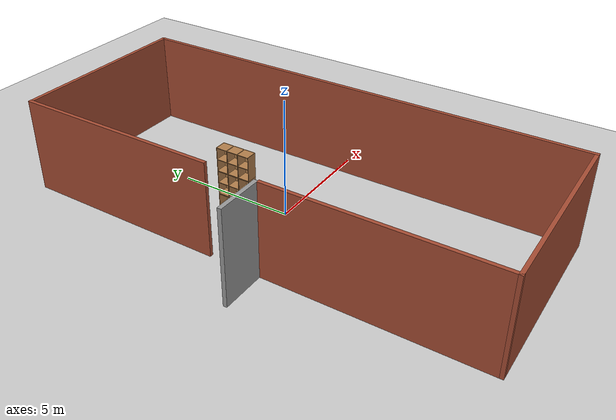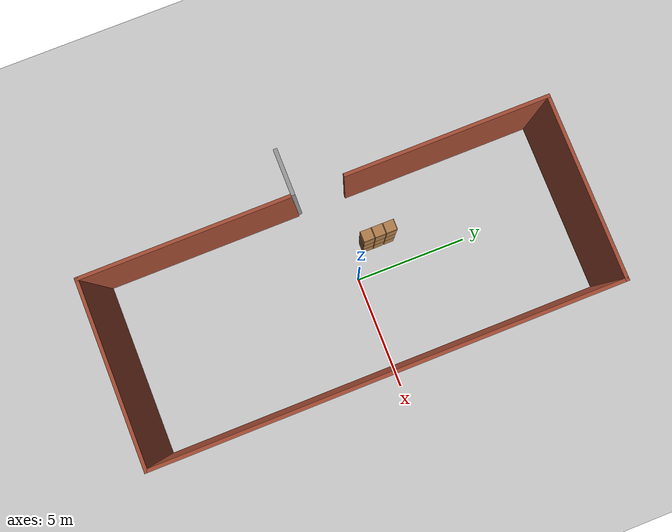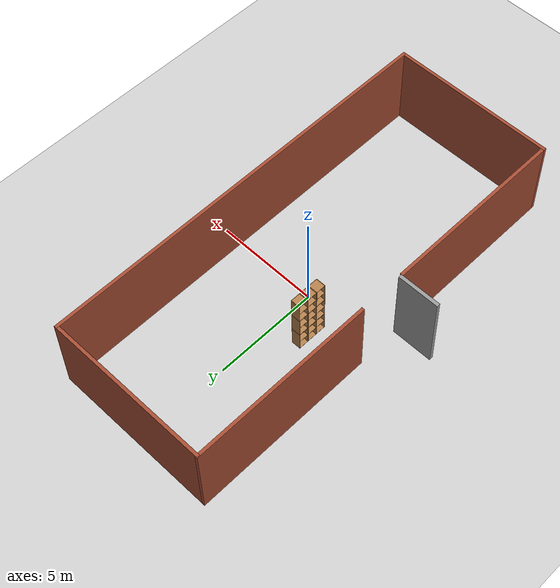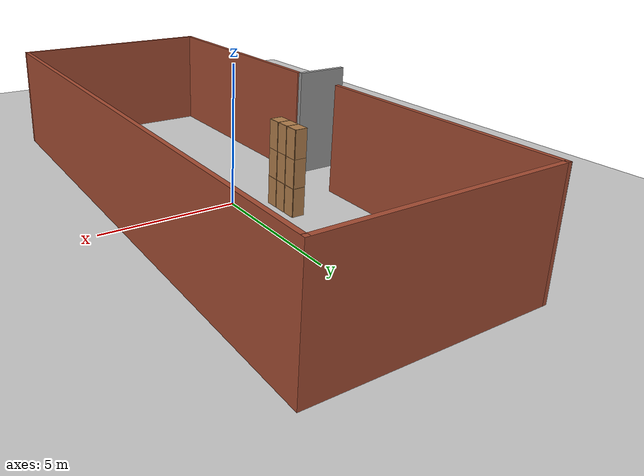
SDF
<sdf version="1.6">
 <world name="default">
  <model name="ground_plane">
   <static>1</static>
   <link name="link">
    <collision name="collision">
     <geometry><plane><normal>0 0 1</normal><size>100 100</size></plane></geometry>
     <surface>
      <contact><collide_bitmask>65535</collide_bitmask></contact>
      <friction><ode><mu>100</mu><mu2>50</mu2></ode></friction>
     </surface>
    </collision>
    <visual name="visual">
     <cast_shadows>0</cast_shadows>
     <geometry><plane><normal>0 0 1</normal><size>100 100</size></plane></geometry>
     <material>
      <script><uri>file://media/materials/scripts/gazebo.material</uri><name>Gazebo/Grey</name></script>
     </material>
    </visual>
   </link>
  </model>
  <model name="AGVUntitled">
   <pose>0.208057 -0.403929 0 0 -0 -3.1397</pose>
   <link name="Door_1">
    <collision name="Door_1_Collision">
     <geometry><box><size>2 0.17 4</size></box></geometry>
     <pose>0 0 2 0 -0 0</pose>
    </collision>
    <visual name="Door_1_Visual">
     <pose>0 0 2 0 -0 0</pose>
     <geometry><box><size>2 0.17 4</size></box></geometry>
     <material>
      <script><uri>file://media/materials/scripts/gazebo.material</uri><name>Gazebo/Grey</name></script>
     </material>
    </visual>
    <pose>4.90883 0.925001 0 0 -0 0</pose>
   </link>
   <link name="Wall_11">
    <collision name="Wall_11_Collision">
     <geometry><box><size>8 0.15 4</size></box></geometry>
     <pose>0 0 2 0 -0 0</pose>
    </collision>
    <visual name="Wall_11_Visual">
     <pose>0 0 2 0 -0 0</pose>
     <geometry><box><size>8 0.15 4</size></box></geometry>
     <material>
      <script><uri>file://media/materials/scripts/gazebo.material</uri><name>Gazebo/Bricks</name></script>
      <ambient>1 1 1 1</ambient>
     </material>
     <meta><layer>0</layer></meta>
    </visual>
    <pose>4.8e-05 9.925 0 0 -0 3.14155</pose>
   </link>
   <link name="Wall_13">
    <collision name="Wall_13_Collision">
     <geometry><box><size>20 0.15 4</size></box></geometry>
     <pose>0 0 2 0 -0 0</pose>
    </collision>
    <visual name="Wall_13_Visual">
     <pose>0 0 2 0 -0 0</pose>
     <geometry><box><size>20 0.15 4</size></box></geometry>
     <material>
      <script><uri>file://media/materials/scripts/gazebo.material</uri><name>Gazebo/Bricks</name></script>
      <ambient>1 1 1 1</ambient>
     </material>
     <meta><layer>0</layer></meta>
    </visual>
    <pose>-3.92495 -1e-06 0 0 -0 -1.57081</pose>
   </link>
   <link name="Wall_16">
    <collision name="Wall_16_Collision">
     <geometry><box><size>9 0.15 4</size></box></geometry>
     <pose>0 0 2 0 -0 0</pose>
    </collision>
    <visual name="Wall_16_Visual">
     <pose>0 0 2 0 -0 0</pose>
     <geometry><box><size>9 0.15 4</size></box></geometry>
     <material>
      <script><uri>file://media/materials/scripts/gazebo.material</uri><name>Gazebo/Bricks</name></script>
      <ambient>1 1 1 1</ambient>
     </material>
     <meta><layer>0</layer></meta>
    </visual>
    <pose>3.92495 5.49984 0 0 -0 -1.5708</pose>
   </link>
   <link name="Wall_22">
    <collision name="Wall_22_Collision">
     <geometry><box><size>8 0.15 4</size></box></geometry>
     <pose>0 0 2 0 -0 0</pose>
    </collision>
    <visual name="Wall_22_Visual">
     <pose>0 0 2 0 -0 0</pose>
     <geometry><box><size>8 0.15 4</size></box></geometry>
     <material>
      <script><uri>file://media/materials/scripts/gazebo.material</uri><name>Gazebo/Bricks</name></script>
      <ambient>1 1 1 1</ambient>
     </material>
     <meta><layer>0</layer></meta>
    </visual>
    <pose>-5.1e-05 -9.92516 0 0 -0 0</pose>
   </link>
   <link name="Wall_26">
    <collision name="Wall_26_Collision">
     <geometry><box><size>8.8 0.15 4</size></box></geometry>
     <pose>0 0 2 0 -0 0</pose>
    </collision>
    <visual name="Wall_26_Visual">
     <pose>0 0 2 0 -0 0</pose>
     <geometry><box><size>8.8 0.15 4</size></box></geometry>
     <material>
      <script><uri>file://media/materials/scripts/gazebo.material</uri><name>Gazebo/Bricks</name></script>
      <ambient>1 1 1 1</ambient>
     </material>
     <meta><layer>0</layer></meta>
    </visual>
    <pose>3.92495 -5.60016 0 0 -0 1.5708</pose>
   </link>
   <static>1</static>
  </model>
  <model name="Locker18_clone_4_clone_2_clone_2_clone_2">
   <model name="Locker18">
    <model name="Locker3">
     <model name="cabinet">
      <static>1</static>
      <link name="cabinet_bottom_plate">
       <inertial>
        <pose>0 0 -1 0 -0 0</pose>
        <inertia><ixx>2.05</ixx><ixy>0</ixy><ixz>0</ixz><iyy>2.05</iyy><iyz>0</iyz><izz>2.05</izz></inertia>
        <mass>25</mass>
       </inertial>
       <collision name="cabinet_bottom_plate_geom">
        <pose>0 0 0.01 0 -0 0</pose>
        <geometry><box><size>0.45 0.45 0.02</size></box></geometry>
       </collision>
       <visual name="cabinet_bottom_plate_geom_visual">
        <pose>0 0 0.01 0 -0 0</pose>
        <geometry><box><size>0.45 0.45 0.02</size></box></geometry>
        <material>
         <script><uri>file://media/materials/scripts/gazebo.material</uri><name>Gazebo/Wood</name></script>
        </material>
       </visual>
       <collision name="cabinet_bottom_plate_geom_cabinet_back_plate">
        <pose>0.235 0 0.51 0 -0 0</pose>
        <geometry><box><size>0.02 0.45 1.02</size></box></geometry>
       </collision>
       <visual name="cabinet_bottom_plate_geom_cabinet_back_plate_visual">
        <pose>0.235 0 0.51 0 -0 0</pose>
        <geometry><box><size>0.02 0.45 1.02</size></box></geometry>
        <material>
         <script><uri>file://media/materials/scripts/gazebo.material</uri><name>Gazebo/Wood</name></script>
        </material>
       </visual>
       <collision name="cabinet_bottom_plate_geom_cabinet_left_plate">
        <pose>0 0.235 0.51 0 -0 0</pose>
        <geometry><box><size>0.45 0.02 1.02</size></box></geometry>
       </collision>
       <visual name="cabinet_bottom_plate_geom_cabinet_left_plate_visual">
        <pose>0 0.235 0.51 0 -0 0</pose>
        <geometry><box><size>0.45 0.02 1.02</size></box></geometry>
        <material>
         <script><uri>file://media/materials/scripts/gazebo.material</uri><name>Gazebo/Wood</name></script>
        </material>
       </visual>
       <collision name="cabinet_bottom_plate_geom_cabinet_middle_plate">
        <pose>0 0 0.51 0 -0 0</pose>
        <geometry><box><size>0.45 0.45 0.02</size></box></geometry>
       </collision>
       <visual name="cabinet_bottom_plate_geom_cabinet_middle_plate_visual">
        <pose>0 0 0.51 0 -0 0</pose>
        <geometry><box><size>0.45 0.45 0.02</size></box></geometry>
        <material>
         <script><uri>file://media/materials/scripts/gazebo.material</uri><name>Gazebo/Wood</name></script>
        </material>
       </visual>
       <collision name="cabinet_bottom_plate_geom_cabinet_right_plate">
        <pose>0 -0.235 0.51 0 -0 0</pose>
        <geometry><box><size>0.45 0.02 1.02</size></box></geometry>
       </collision>
       <visual name="cabinet_bottom_plate_geom_cabinet_right_plate_visual">
        <pose>0 -0.235 0.51 0 -0 0</pose>
        <geometry><box><size>0.45 0.02 1.02</size></box></geometry>
        <material>
         <script><uri>file://media/materials/scripts/gazebo.material</uri><name>Gazebo/Wood</name></script>
        </material>
       </visual>
       <collision name="cabinet_bottom_plate_geom_cabinet_top_plate">
        <pose>0 0 1.01 0 -0 0</pose>
        <geometry><box><size>0.45 0.45 0.02</size></box></geometry>
       </collision>
       <visual name="cabinet_bottom_plate_geom_cabinet_top_plate_visual">
        <pose>0 0 1.01 0 -0 0</pose>
        <geometry><box><size>0.45 0.45 0.02</size></box></geometry>
        <material>
         <script><uri>file://media/materials/scripts/gazebo.material</uri><name>Gazebo/Wood</name></script>
        </material>
       </visual>
      </link>
      <pose>-0.676968 1.45758 0 0 -0 0</pose>
     </model>
     <model name="cabinet_clone">
      <static>1</static>
      <link name="cabinet_bottom_plate">
       <inertial>
        <pose>0 0 -1 0 -0 0</pose>
        <inertia><ixx>2.05</ixx><ixy>0</ixy><ixz>0</ixz><iyy>2.05</iyy><iyz>0</iyz><izz>2.05</izz></inertia>
        <mass>25</mass>
       </inertial>
       <collision name="cabinet_bottom_plate_geom">
        <pose>0 0 0.01 0 -0 0</pose>
        <geometry><box><size>0.45 0.45 0.02</size></box></geometry>
       </collision>
       <visual name="cabinet_bottom_plate_geom_visual">
        <pose>0 0 0.01 0 -0 0</pose>
        <geometry><box><size>0.45 0.45 0.02</size></box></geometry>
        <material>
         <script><uri>file://media/materials/scripts/gazebo.material</uri><name>Gazebo/Wood</name></script>
        </material>
       </visual>
       <collision name="cabinet_bottom_plate_geom_cabinet_back_plate">
        <pose>0.235 0 0.51 0 -0 0</pose>
        <geometry><box><size>0.02 0.45 1.02</size></box></geometry>
       </collision>
       <visual name="cabinet_bottom_plate_geom_cabinet_back_plate_visual">
        <pose>0.235 0 0.51 0 -0 0</pose>
        <geometry><box><size>0.02 0.45 1.02</size></box></geometry>
        <material>
         <script><uri>file://media/materials/scripts/gazebo.material</uri><name>Gazebo/Wood</name></script>
        </material>
       </visual>
       <collision name="cabinet_bottom_plate_geom_cabinet_left_plate">
        <pose>0 0.235 0.51 0 -0 0</pose>
        <geometry><box><size>0.45 0.02 1.02</size></box></geometry>
       </collision>
       <visual name="cabinet_bottom_plate_geom_cabinet_left_plate_visual">
        <pose>0 0.235 0.51 0 -0 0</pose>
        <geometry><box><size>0.45 0.02 1.02</size></box></geometry>
        <material>
         <script><uri>file://media/materials/scripts/gazebo.material</uri><name>Gazebo/Wood</name></script>
        </material>
       </visual>
       <collision name="cabinet_bottom_plate_geom_cabinet_middle_plate">
        <pose>0 0 0.51 0 -0 0</pose>
        <geometry><box><size>0.45 0.45 0.02</size></box></geometry>
       </collision>
       <visual name="cabinet_bottom_plate_geom_cabinet_middle_plate_visual">
        <pose>0 0 0.51 0 -0 0</pose>
        <geometry><box><size>0.45 0.45 0.02</size></box></geometry>
        <material>
         <script><uri>file://media/materials/scripts/gazebo.material</uri><name>Gazebo/Wood</name></script>
        </material>
       </visual>
       <collision name="cabinet_bottom_plate_geom_cabinet_right_plate">
        <pose>0 -0.235 0.51 0 -0 0</pose>
        <geometry><box><size>0.45 0.02 1.02</size></box></geometry>
       </collision>
       <visual name="cabinet_bottom_plate_geom_cabinet_right_plate_visual">
        <pose>0 -0.235 0.51 0 -0 0</pose>
        <geometry><box><size>0.45 0.02 1.02</size></box></geometry>
        <material>
         <script><uri>file://media/materials/scripts/gazebo.material</uri><name>Gazebo/Wood</name></script>
        </material>
       </visual>
       <collision name="cabinet_bottom_plate_geom_cabinet_top_plate">
        <pose>0 0 1.01 0 -0 0</pose>
        <geometry><box><size>0.45 0.45 0.02</size></box></geometry>
       </collision>
       <visual name="cabinet_bottom_plate_geom_cabinet_top_plate_visual">
        <pose>0 0 1.01 0 -0 0</pose>
        <geometry><box><size>0.45 0.45 0.02</size></box></geometry>
        <material>
         <script><uri>file://media/materials/scripts/gazebo.material</uri><name>Gazebo/Wood</name></script>
        </material>
       </visual>
      </link>
      <pose>-0.676968 0.970971 0 0 -0 0</pose>
     </model>
     <model name="cabinet_clone_0">
      <static>1</static>
      <link name="cabinet_bottom_plate">
       <inertial>
        <pose>0 0 -1 0 -0 0</pose>
        <inertia><ixx>2.05</ixx><ixy>0</ixy><ixz>0</ixz><iyy>2.05</iyy><iyz>0</iyz><izz>2.05</izz></inertia>
        <mass>25</mass>
       </inertial>
       <collision name="cabinet_bottom_plate_geom">
        <pose>0 0 0.01 0 -0 0</pose>
        <geometry><box><size>0.45 0.45 0.02</size></box></geometry>
       </collision>
       <visual name="cabinet_bottom_plate_geom_visual">
        <pose>0 0 0.01 0 -0 0</pose>
        <geometry><box><size>0.45 0.45 0.02</size></box></geometry>
        <material>
         <script><uri>file://media/materials/scripts/gazebo.material</uri><name>Gazebo/Wood</name></script>
        </material>
       </visual>
       <collision name="cabinet_bottom_plate_geom_cabinet_back_plate">
        <pose>0.235 0 0.51 0 -0 0</pose>
        <geometry><box><size>0.02 0.45 1.02</size></box></geometry>
       </collision>
       <visual name="cabinet_bottom_plate_geom_cabinet_back_plate_visual">
        <pose>0.235 0 0.51 0 -0 0</pose>
        <geometry><box><size>0.02 0.45 1.02</size></box></geometry>
        <material>
         <script><uri>file://media/materials/scripts/gazebo.material</uri><name>Gazebo/Wood</name></script>
        </material>
       </visual>
       <collision name="cabinet_bottom_plate_geom_cabinet_left_plate">
        <pose>0 0.235 0.51 0 -0 0</pose>
        <geometry><box><size>0.45 0.02 1.02</size></box></geometry>
       </collision>
       <visual name="cabinet_bottom_plate_geom_cabinet_left_plate_visual">
        <pose>0 0.235 0.51 0 -0 0</pose>
        <geometry><box><size>0.45 0.02 1.02</size></box></geometry>
        <material>
         <script><uri>file://media/materials/scripts/gazebo.material</uri><name>Gazebo/Wood</name></script>
        </material>
       </visual>
       <collision name="cabinet_bottom_plate_geom_cabinet_middle_plate">
        <pose>0 0 0.51 0 -0 0</pose>
        <geometry><box><size>0.45 0.45 0.02</size></box></geometry>
       </collision>
       <visual name="cabinet_bottom_plate_geom_cabinet_middle_plate_visual">
        <pose>0 0 0.51 0 -0 0</pose>
        <geometry><box><size>0.45 0.45 0.02</size></box></geometry>
        <material>
         <script><uri>file://media/materials/scripts/gazebo.material</uri><name>Gazebo/Wood</name></script>
        </material>
       </visual>
       <collision name="cabinet_bottom_plate_geom_cabinet_right_plate">
        <pose>0 -0.235 0.51 0 -0 0</pose>
        <geometry><box><size>0.45 0.02 1.02</size></box></geometry>
       </collision>
       <visual name="cabinet_bottom_plate_geom_cabinet_right_plate_visual">
        <pose>0 -0.235 0.51 0 -0 0</pose>
        <geometry><box><size>0.45 0.02 1.02</size></box></geometry>
        <material>
         <script><uri>file://media/materials/scripts/gazebo.material</uri><name>Gazebo/Wood</name></script>
        </material>
       </visual>
       <collision name="cabinet_bottom_plate_geom_cabinet_top_plate">
        <pose>0 0 1.01 0 -0 0</pose>
        <geometry><box><size>0.45 0.45 0.02</size></box></geometry>
       </collision>
       <visual name="cabinet_bottom_plate_geom_cabinet_top_plate_visual">
        <pose>0 0 1.01 0 -0 0</pose>
        <geometry><box><size>0.45 0.45 0.02</size></box></geometry>
        <material>
         <script><uri>file://media/materials/scripts/gazebo.material</uri><name>Gazebo/Wood</name></script>
        </material>
       </visual>
      </link>
      <pose>-0.676968 0.48391 0 0 -0 0</pose>
     </model>
     <static>0</static>
     <pose>0 3e-06 -1.02763 0 -0 0</pose>
    </model>
    <model name="Locker3_clone">
     <model name="cabinet">
      <static>1</static>
      <link name="cabinet_bottom_plate">
       <inertial>
        <pose>0 0 -1 0 -0 0</pose>
        <inertia><ixx>2.05</ixx><ixy>0</ixy><ixz>0</ixz><iyy>2.05</iyy><iyz>0</iyz><izz>2.05</izz></inertia>
        <mass>25</mass>
       </inertial>
       <collision name="cabinet_bottom_plate_geom">
        <pose>0 0 0.01 0 -0 0</pose>
        <geometry><box><size>0.45 0.45 0.02</size></box></geometry>
       </collision>
       <visual name="cabinet_bottom_plate_geom_visual">
        <pose>0 0 0.01 0 -0 0</pose>
        <geometry><box><size>0.45 0.45 0.02</size></box></geometry>
        <material>
         <script><uri>file://media/materials/scripts/gazebo.material</uri><name>Gazebo/Wood</name></script>
        </material>
       </visual>
       <collision name="cabinet_bottom_plate_geom_cabinet_back_plate">
        <pose>0.235 0 0.51 0 -0 0</pose>
        <geometry><box><size>0.02 0.45 1.02</size></box></geometry>
       </collision>
       <visual name="cabinet_bottom_plate_geom_cabinet_back_plate_visual">
        <pose>0.235 0 0.51 0 -0 0</pose>
        <geometry><box><size>0.02 0.45 1.02</size></box></geometry>
        <material>
         <script><uri>file://media/materials/scripts/gazebo.material</uri><name>Gazebo/Wood</name></script>
        </material>
       </visual>
       <collision name="cabinet_bottom_plate_geom_cabinet_left_plate">
        <pose>0 0.235 0.51 0 -0 0</pose>
        <geometry><box><size>0.45 0.02 1.02</size></box></geometry>
       </collision>
       <visual name="cabinet_bottom_plate_geom_cabinet_left_plate_visual">
        <pose>0 0.235 0.51 0 -0 0</pose>
        <geometry><box><size>0.45 0.02 1.02</size></box></geometry>
        <material>
         <script><uri>file://media/materials/scripts/gazebo.material</uri><name>Gazebo/Wood</name></script>
        </material>
       </visual>
       <collision name="cabinet_bottom_plate_geom_cabinet_middle_plate">
        <pose>0 0 0.51 0 -0 0</pose>
        <geometry><box><size>0.45 0.45 0.02</size></box></geometry>
       </collision>
       <visual name="cabinet_bottom_plate_geom_cabinet_middle_plate_visual">
        <pose>0 0 0.51 0 -0 0</pose>
        <geometry><box><size>0.45 0.45 0.02</size></box></geometry>
        <material>
         <script><uri>file://media/materials/scripts/gazebo.material</uri><name>Gazebo/Wood</name></script>
        </material>
       </visual>
       <collision name="cabinet_bottom_plate_geom_cabinet_right_plate">
        <pose>0 -0.235 0.51 0 -0 0</pose>
        <geometry><box><size>0.45 0.02 1.02</size></box></geometry>
       </collision>
       <visual name="cabinet_bottom_plate_geom_cabinet_right_plate_visual">
        <pose>0 -0.235 0.51 0 -0 0</pose>
        <geometry><box><size>0.45 0.02 1.02</size></box></geometry>
        <material>
         <script><uri>file://media/materials/scripts/gazebo.material</uri><name>Gazebo/Wood</name></script>
        </material>
       </visual>
       <collision name="cabinet_bottom_plate_geom_cabinet_top_plate">
        <pose>0 0 1.01 0 -0 0</pose>
        <geometry><box><size>0.45 0.45 0.02</size></box></geometry>
       </collision>
       <visual name="cabinet_bottom_plate_geom_cabinet_top_plate_visual">
        <pose>0 0 1.01 0 -0 0</pose>
        <geometry><box><size>0.45 0.45 0.02</size></box></geometry>
        <material>
         <script><uri>file://media/materials/scripts/gazebo.material</uri><name>Gazebo/Wood</name></script>
        </material>
       </visual>
      </link>
      <pose>-0.676968 1.45758 0 0 -0 0</pose>
     </model>
     <model name="cabinet_clone">
      <static>1</static>
      <link name="cabinet_bottom_plate">
       <inertial>
        <pose>0 0 -1 0 -0 0</pose>
        <inertia><ixx>2.05</ixx><ixy>0</ixy><ixz>0</ixz><iyy>2.05</iyy><iyz>0</iyz><izz>2.05</izz></inertia>
        <mass>25</mass>
       </inertial>
       <collision name="cabinet_bottom_plate_geom">
        <pose>0 0 0.01 0 -0 0</pose>
        <geometry><box><size>0.45 0.45 0.02</size></box></geometry>
       </collision>
       <visual name="cabinet_bottom_plate_geom_visual">
        <pose>0 0 0.01 0 -0 0</pose>
        <geometry><box><size>0.45 0.45 0.02</size></box></geometry>
        <material>
         <script><uri>file://media/materials/scripts/gazebo.material</uri><name>Gazebo/Wood</name></script>
        </material>
       </visual>
       <collision name="cabinet_bottom_plate_geom_cabinet_back_plate">
        <pose>0.235 0 0.51 0 -0 0</pose>
        <geometry><box><size>0.02 0.45 1.02</size></box></geometry>
       </collision>
       <visual name="cabinet_bottom_plate_geom_cabinet_back_plate_visual">
        <pose>0.235 0 0.51 0 -0 0</pose>
        <geometry><box><size>0.02 0.45 1.02</size></box></geometry>
        <material>
         <script><uri>file://media/materials/scripts/gazebo.material</uri><name>Gazebo/Wood</name></script>
        </material>
       </visual>
       <collision name="cabinet_bottom_plate_geom_cabinet_left_plate">
        <pose>0 0.235 0.51 0 -0 0</pose>
        <geometry><box><size>0.45 0.02 1.02</size></box></geometry>
       </collision>
       <visual name="cabinet_bottom_plate_geom_cabinet_left_plate_visual">
        <pose>0 0.235 0.51 0 -0 0</pose>
        <geometry><box><size>0.45 0.02 1.02</size></box></geometry>
        <material>
         <script><uri>file://media/materials/scripts/gazebo.material</uri><name>Gazebo/Wood</name></script>
        </material>
       </visual>
       <collision name="cabinet_bottom_plate_geom_cabinet_middle_plate">
        <pose>0 0 0.51 0 -0 0</pose>
        <geometry><box><size>0.45 0.45 0.02</size></box></geometry>
       </collision>
       <visual name="cabinet_bottom_plate_geom_cabinet_middle_plate_visual">
        <pose>0 0 0.51 0 -0 0</pose>
        <geometry><box><size>0.45 0.45 0.02</size></box></geometry>
        <material>
         <script><uri>file://media/materials/scripts/gazebo.material</uri><name>Gazebo/Wood</name></script>
        </material>
       </visual>
       <collision name="cabinet_bottom_plate_geom_cabinet_right_plate">
        <pose>0 -0.235 0.51 0 -0 0</pose>
        <geometry><box><size>0.45 0.02 1.02</size></box></geometry>
       </collision>
       <visual name="cabinet_bottom_plate_geom_cabinet_right_plate_visual">
        <pose>0 -0.235 0.51 0 -0 0</pose>
        <geometry><box><size>0.45 0.02 1.02</size></box></geometry>
        <material>
         <script><uri>file://media/materials/scripts/gazebo.material</uri><name>Gazebo/Wood</name></script>
        </material>
       </visual>
       <collision name="cabinet_bottom_plate_geom_cabinet_top_plate">
        <pose>0 0 1.01 0 -0 0</pose>
        <geometry><box><size>0.45 0.45 0.02</size></box></geometry>
       </collision>
       <visual name="cabinet_bottom_plate_geom_cabinet_top_plate_visual">
        <pose>0 0 1.01 0 -0 0</pose>
        <geometry><box><size>0.45 0.45 0.02</size></box></geometry>
        <material>
         <script><uri>file://media/materials/scripts/gazebo.material</uri><name>Gazebo/Wood</name></script>
        </material>
       </visual>
      </link>
      <pose>-0.676968 0.970971 0 0 -0 0</pose>
     </model>
     <model name="cabinet_clone_0">
      <static>1</static>
      <link name="cabinet_bottom_plate">
       <inertial>
        <pose>0 0 -1 0 -0 0</pose>
        <inertia><ixx>2.05</ixx><ixy>0</ixy><ixz>0</ixz><iyy>2.05</iyy><iyz>0</iyz><izz>2.05</izz></inertia>
        <mass>25</mass>
       </inertial>
       <collision name="cabinet_bottom_plate_geom">
        <pose>0 0 0.01 0 -0 0</pose>
        <geometry><box><size>0.45 0.45 0.02</size></box></geometry>
       </collision>
       <visual name="cabinet_bottom_plate_geom_visual">
        <pose>0 0 0.01 0 -0 0</pose>
        <geometry><box><size>0.45 0.45 0.02</size></box></geometry>
        <material>
         <script><uri>file://media/materials/scripts/gazebo.material</uri><name>Gazebo/Wood</name></script>
        </material>
       </visual>
       <collision name="cabinet_bottom_plate_geom_cabinet_back_plate">
        <pose>0.235 0 0.51 0 -0 0</pose>
        <geometry><box><size>0.02 0.45 1.02</size></box></geometry>
       </collision>
       <visual name="cabinet_bottom_plate_geom_cabinet_back_plate_visual">
        <pose>0.235 0 0.51 0 -0 0</pose>
        <geometry><box><size>0.02 0.45 1.02</size></box></geometry>
        <material>
         <script><uri>file://media/materials/scripts/gazebo.material</uri><name>Gazebo/Wood</name></script>
        </material>
       </visual>
       <collision name="cabinet_bottom_plate_geom_cabinet_left_plate">
        <pose>0 0.235 0.51 0 -0 0</pose>
        <geometry><box><size>0.45 0.02 1.02</size></box></geometry>
       </collision>
       <visual name="cabinet_bottom_plate_geom_cabinet_left_plate_visual">
        <pose>0 0.235 0.51 0 -0 0</pose>
        <geometry><box><size>0.45 0.02 1.02</size></box></geometry>
        <material>
         <script><uri>file://media/materials/scripts/gazebo.material</uri><name>Gazebo/Wood</name></script>
        </material>
       </visual>
       <collision name="cabinet_bottom_plate_geom_cabinet_middle_plate">
        <pose>0 0 0.51 0 -0 0</pose>
        <geometry><box><size>0.45 0.45 0.02</size></box></geometry>
       </collision>
       <visual name="cabinet_bottom_plate_geom_cabinet_middle_plate_visual">
        <pose>0 0 0.51 0 -0 0</pose>
        <geometry><box><size>0.45 0.45 0.02</size></box></geometry>
        <material>
         <script><uri>file://media/materials/scripts/gazebo.material</uri><name>Gazebo/Wood</name></script>
        </material>
       </visual>
       <collision name="cabinet_bottom_plate_geom_cabinet_right_plate">
        <pose>0 -0.235 0.51 0 -0 0</pose>
        <geometry><box><size>0.45 0.02 1.02</size></box></geometry>
       </collision>
       <visual name="cabinet_bottom_plate_geom_cabinet_right_plate_visual">
        <pose>0 -0.235 0.51 0 -0 0</pose>
        <geometry><box><size>0.45 0.02 1.02</size></box></geometry>
        <material>
         <script><uri>file://media/materials/scripts/gazebo.material</uri><name>Gazebo/Wood</name></script>
        </material>
       </visual>
       <collision name="cabinet_bottom_plate_geom_cabinet_top_plate">
        <pose>0 0 1.01 0 -0 0</pose>
        <geometry><box><size>0.45 0.45 0.02</size></box></geometry>
       </collision>
       <visual name="cabinet_bottom_plate_geom_cabinet_top_plate_visual">
        <pose>0 0 1.01 0 -0 0</pose>
        <geometry><box><size>0.45 0.45 0.02</size></box></geometry>
        <material>
         <script><uri>file://media/materials/scripts/gazebo.material</uri><name>Gazebo/Wood</name></script>
        </material>
       </visual>
      </link>
      <pose>-0.676968 0.48391 0 0 -0 0</pose>
     </model>
     <static>0</static>
     <pose>0 3e-06 0.003717 0 -0 0</pose>
    </model>
    <model name="Locker3_clone_clone">
     <model name="cabinet">
      <static>1</static>
      <link name="cabinet_bottom_plate">
       <inertial>
        <pose>0 0 -1 0 -0 0</pose>
        <inertia><ixx>2.05</ixx><ixy>0</ixy><ixz>0</ixz><iyy>2.05</iyy><iyz>0</iyz><izz>2.05</izz></inertia>
        <mass>25</mass>
       </inertial>
       <collision name="cabinet_bottom_plate_geom">
        <pose>0 0 0.01 0 -0 0</pose>
        <geometry><box><size>0.45 0.45 0.02</size></box></geometry>
       </collision>
       <visual name="cabinet_bottom_plate_geom_visual">
        <pose>0 0 0.01 0 -0 0</pose>
        <geometry><box><size>0.45 0.45 0.02</size></box></geometry>
        <material>
         <script><uri>file://media/materials/scripts/gazebo.material</uri><name>Gazebo/Wood</name></script>
        </material>
       </visual>
       <collision name="cabinet_bottom_plate_geom_cabinet_back_plate">
        <pose>0.235 0 0.51 0 -0 0</pose>
        <geometry><box><size>0.02 0.45 1.02</size></box></geometry>
       </collision>
       <visual name="cabinet_bottom_plate_geom_cabinet_back_plate_visual">
        <pose>0.235 0 0.51 0 -0 0</pose>
        <geometry><box><size>0.02 0.45 1.02</size></box></geometry>
        <material>
         <script><uri>file://media/materials/scripts/gazebo.material</uri><name>Gazebo/Wood</name></script>
        </material>
       </visual>
       <collision name="cabinet_bottom_plate_geom_cabinet_left_plate">
        <pose>0 0.235 0.51 0 -0 0</pose>
        <geometry><box><size>0.45 0.02 1.02</size></box></geometry>
       </collision>
       <visual name="cabinet_bottom_plate_geom_cabinet_left_plate_visual">
        <pose>0 0.235 0.51 0 -0 0</pose>
        <geometry><box><size>0.45 0.02 1.02</size></box></geometry>
        <material>
         <script><uri>file://media/materials/scripts/gazebo.material</uri><name>Gazebo/Wood</name></script>
        </material>
       </visual>
       <collision name="cabinet_bottom_plate_geom_cabinet_middle_plate">
        <pose>0 0 0.51 0 -0 0</pose>
        <geometry><box><size>0.45 0.45 0.02</size></box></geometry>
       </collision>
       <visual name="cabinet_bottom_plate_geom_cabinet_middle_plate_visual">
        <pose>0 0 0.51 0 -0 0</pose>
        <geometry><box><size>0.45 0.45 0.02</size></box></geometry>
        <material>
         <script><uri>file://media/materials/scripts/gazebo.material</uri><name>Gazebo/Wood</name></script>
        </material>
       </visual>
       <collision name="cabinet_bottom_plate_geom_cabinet_right_plate">
        <pose>0 -0.235 0.51 0 -0 0</pose>
        <geometry><box><size>0.45 0.02 1.02</size></box></geometry>
       </collision>
       <visual name="cabinet_bottom_plate_geom_cabinet_right_plate_visual">
        <pose>0 -0.235 0.51 0 -0 0</pose>
        <geometry><box><size>0.45 0.02 1.02</size></box></geometry>
        <material>
         <script><uri>file://media/materials/scripts/gazebo.material</uri><name>Gazebo/Wood</name></script>
        </material>
       </visual>
       <collision name="cabinet_bottom_plate_geom_cabinet_top_plate">
        <pose>0 0 1.01 0 -0 0</pose>
        <geometry><box><size>0.45 0.45 0.02</size></box></geometry>
       </collision>
       <visual name="cabinet_bottom_plate_geom_cabinet_top_plate_visual">
        <pose>0 0 1.01 0 -0 0</pose>
        <geometry><box><size>0.45 0.45 0.02</size></box></geometry>
        <material>
         <script><uri>file://media/materials/scripts/gazebo.material</uri><name>Gazebo/Wood</name></script>
        </material>
       </visual>
      </link>
      <pose>-0.676968 1.45758 0 0 -0 0</pose>
     </model>
     <model name="cabinet_clone">
      <static>1</static>
      <link name="cabinet_bottom_plate">
       <inertial>
        <pose>0 0 -1 0 -0 0</pose>
        <inertia><ixx>2.05</ixx><ixy>0</ixy><ixz>0</ixz><iyy>2.05</iyy><iyz>0</iyz><izz>2.05</izz></inertia>
        <mass>25</mass>
       </inertial>
       <collision name="cabinet_bottom_plate_geom">
        <pose>0 0 0.01 0 -0 0</pose>
        <geometry><box><size>0.45 0.45 0.02</size></box></geometry>
       </collision>
       <visual name="cabinet_bottom_plate_geom_visual">
        <pose>0 0 0.01 0 -0 0</pose>
        <geometry><box><size>0.45 0.45 0.02</size></box></geometry>
        <material>
         <script><uri>file://media/materials/scripts/gazebo.material</uri><name>Gazebo/Wood</name></script>
        </material>
       </visual>
       <collision name="cabinet_bottom_plate_geom_cabinet_back_plate">
        <pose>0.235 0 0.51 0 -0 0</pose>
        <geometry><box><size>0.02 0.45 1.02</size></box></geometry>
       </collision>
       <visual name="cabinet_bottom_plate_geom_cabinet_back_plate_visual">
        <pose>0.235 0 0.51 0 -0 0</pose>
        <geometry><box><size>0.02 0.45 1.02</size></box></geometry>
        <material>
         <script><uri>file://media/materials/scripts/gazebo.material</uri><name>Gazebo/Wood</name></script>
        </material>
       </visual>
       <collision name="cabinet_bottom_plate_geom_cabinet_left_plate">
        <pose>0 0.235 0.51 0 -0 0</pose>
        <geometry><box><size>0.45 0.02 1.02</size></box></geometry>
       </collision>
       <visual name="cabinet_bottom_plate_geom_cabinet_left_plate_visual">
        <pose>0 0.235 0.51 0 -0 0</pose>
        <geometry><box><size>0.45 0.02 1.02</size></box></geometry>
        <material>
         <script><uri>file://media/materials/scripts/gazebo.material</uri><name>Gazebo/Wood</name></script>
        </material>
       </visual>
       <collision name="cabinet_bottom_plate_geom_cabinet_middle_plate">
        <pose>0 0 0.51 0 -0 0</pose>
        <geometry><box><size>0.45 0.45 0.02</size></box></geometry>
       </collision>
       <visual name="cabinet_bottom_plate_geom_cabinet_middle_plate_visual">
        <pose>0 0 0.51 0 -0 0</pose>
        <geometry><box><size>0.45 0.45 0.02</size></box></geometry>
        <material>
         <script><uri>file://media/materials/scripts/gazebo.material</uri><name>Gazebo/Wood</name></script>
        </material>
       </visual>
       <collision name="cabinet_bottom_plate_geom_cabinet_right_plate">
        <pose>0 -0.235 0.51 0 -0 0</pose>
        <geometry><box><size>0.45 0.02 1.02</size></box></geometry>
       </collision>
       <visual name="cabinet_bottom_plate_geom_cabinet_right_plate_visual">
        <pose>0 -0.235 0.51 0 -0 0</pose>
        <geometry><box><size>0.45 0.02 1.02</size></box></geometry>
        <material>
         <script><uri>file://media/materials/scripts/gazebo.material</uri><name>Gazebo/Wood</name></script>
        </material>
       </visual>
       <collision name="cabinet_bottom_plate_geom_cabinet_top_plate">
        <pose>0 0 1.01 0 -0 0</pose>
        <geometry><box><size>0.45 0.45 0.02</size></box></geometry>
       </collision>
       <visual name="cabinet_bottom_plate_geom_cabinet_top_plate_visual">
        <pose>0 0 1.01 0 -0 0</pose>
        <geometry><box><size>0.45 0.45 0.02</size></box></geometry>
        <material>
         <script><uri>file://media/materials/scripts/gazebo.material</uri><name>Gazebo/Wood</name></script>
        </material>
       </visual>
      </link>
      <pose>-0.676968 0.970971 0 0 -0 0</pose>
     </model>
     <model name="cabinet_clone_0">
      <static>1</static>
      <link name="cabinet_bottom_plate">
       <inertial>
        <pose>0 0 -1 0 -0 0</pose>
        <inertia><ixx>2.05</ixx><ixy>0</ixy><ixz>0</ixz><iyy>2.05</iyy><iyz>0</iyz><izz>2.05</izz></inertia>
        <mass>25</mass>
       </inertial>
       <collision name="cabinet_bottom_plate_geom">
        <pose>0 0 0.01 0 -0 0</pose>
        <geometry><box><size>0.45 0.45 0.02</size></box></geometry>
       </collision>
       <visual name="cabinet_bottom_plate_geom_visual">
        <pose>0 0 0.01 0 -0 0</pose>
        <geometry><box><size>0.45 0.45 0.02</size></box></geometry>
        <material>
         <script><uri>file://media/materials/scripts/gazebo.material</uri><name>Gazebo/Wood</name></script>
        </material>
       </visual>
       <collision name="cabinet_bottom_plate_geom_cabinet_back_plate">
        <pose>0.235 0 0.51 0 -0 0</pose>
        <geometry><box><size>0.02 0.45 1.02</size></box></geometry>
       </collision>
       <visual name="cabinet_bottom_plate_geom_cabinet_back_plate_visual">
        <pose>0.235 0 0.51 0 -0 0</pose>
        <geometry><box><size>0.02 0.45 1.02</size></box></geometry>
        <material>
         <script><uri>file://media/materials/scripts/gazebo.material</uri><name>Gazebo/Wood</name></script>
        </material>
       </visual>
       <collision name="cabinet_bottom_plate_geom_cabinet_left_plate">
        <pose>0 0.235 0.51 0 -0 0</pose>
        <geometry><box><size>0.45 0.02 1.02</size></box></geometry>
       </collision>
       <visual name="cabinet_bottom_plate_geom_cabinet_left_plate_visual">
        <pose>0 0.235 0.51 0 -0 0</pose>
        <geometry><box><size>0.45 0.02 1.02</size></box></geometry>
        <material>
         <script><uri>file://media/materials/scripts/gazebo.material</uri><name>Gazebo/Wood</name></script>
        </material>
       </visual>
       <collision name="cabinet_bottom_plate_geom_cabinet_middle_plate">
        <pose>0 0 0.51 0 -0 0</pose>
        <geometry><box><size>0.45 0.45 0.02</size></box></geometry>
       </collision>
       <visual name="cabinet_bottom_plate_geom_cabinet_middle_plate_visual">
        <pose>0 0 0.51 0 -0 0</pose>
        <geometry><box><size>0.45 0.45 0.02</size></box></geometry>
        <material>
         <script><uri>file://media/materials/scripts/gazebo.material</uri><name>Gazebo/Wood</name></script>
        </material>
       </visual>
       <collision name="cabinet_bottom_plate_geom_cabinet_right_plate">
        <pose>0 -0.235 0.51 0 -0 0</pose>
        <geometry><box><size>0.45 0.02 1.02</size></box></geometry>
       </collision>
       <visual name="cabinet_bottom_plate_geom_cabinet_right_plate_visual">
        <pose>0 -0.235 0.51 0 -0 0</pose>
        <geometry><box><size>0.45 0.02 1.02</size></box></geometry>
        <material>
         <script><uri>file://media/materials/scripts/gazebo.material</uri><name>Gazebo/Wood</name></script>
        </material>
       </visual>
       <collision name="cabinet_bottom_plate_geom_cabinet_top_plate">
        <pose>0 0 1.01 0 -0 0</pose>
        <geometry><box><size>0.45 0.45 0.02</size></box></geometry>
       </collision>
       <visual name="cabinet_bottom_plate_geom_cabinet_top_plate_visual">
        <pose>0 0 1.01 0 -0 0</pose>
        <geometry><box><size>0.45 0.45 0.02</size></box></geometry>
        <material>
         <script><uri>file://media/materials/scripts/gazebo.material</uri><name>Gazebo/Wood</name></script>
        </material>
       </visual>
      </link>
      <pose>-0.676968 0.48391 0 0 -0 0</pose>
     </model>
     <static>0</static>
     <pose>0 3e-06 1.02391 0 -0 0</pose>
    </model>
    <static>0</static>
    <pose>-0 4e-06 4e-06 0 -0 0</pose>
   </model>
   <static>0</static>
   <pose>-0.627236 0.378364 1.08672 0 -0 0</pose>
  </model>
 </world>
</sdf>
